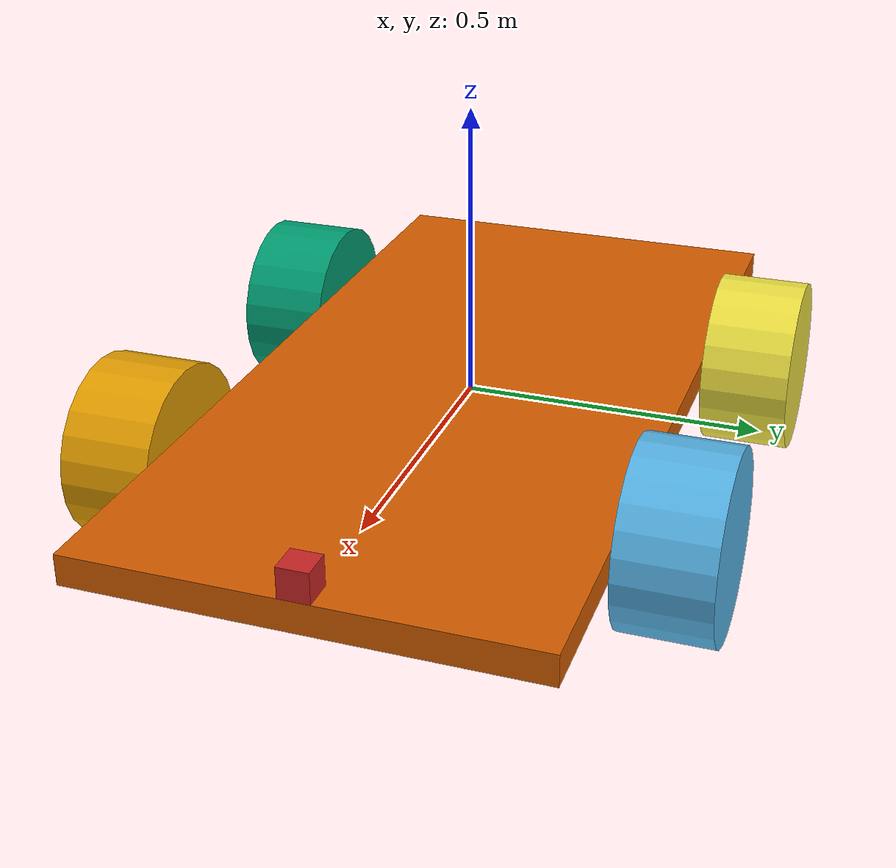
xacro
<?xml version="1.0"?>
<robot name="proto" xmlns:xacro="http://www.ros.org/wiki/xacro">
  <!--top level robot description-->
  <xacro:include filename="proto_constants.xacro"/>
  <xacro:include filename="proto_drivebase_controller.xacro"/>
  <xacro:include filename="proto_sensors.xacro"/>
  <xacro:include filename="proto_model.xacro"/>
</robot>

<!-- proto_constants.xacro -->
<robot name="proto" xmlns:xacro="http://www.ros.org/wiki/xacro">
  <!--shared model level constants for the prototype gazebo model-->

  <!--move base parameters-->
  <xacro:property name="itom" value="0.0254" /> <!-- Inches to meters conversion -->
  <xacro:property name="base_width" value="${29*itom}"/>
  <xacro:property name="base_length" value="${58*itom}"/> <!-- Max val: 50" bare minimum -->
  <xacro:property name="base_height" value="${2*itom}"/>
  <xacro:property name="base_mass"   value="5"/>

  <!--wheel parameters-->
  <xacro:property name="wheel_radius" value="${6*itom}"/>
  <xacro:property name="wheel_width" value="${6*itom}"/>
  <xacro:property name="wheel_mass" value="0.5"/>

  <!--stereo camera parameters-->
  <xacro:property name="camera_size" value="0.05" />
  <xacro:property name="camera_mass" value="0.01" />
</robot>

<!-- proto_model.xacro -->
<robot xmlns:xacro="http://www.ros.org/wiki/xacro" name="proto">

  <!--DRIVEBASE-->
  <!-- A macro for creating a wheel with a link, joint, and transmission -->
  <xacro:macro name="wheel" params="name fb lr">
    <link name="${name}">
      <visual>
        <geometry>
          <cylinder radius="${wheel_radius}" length="${wheel_width}" />
        </geometry>
        <origin rpy="${pi/2} 0 0" />
      </visual>
      <collision>
        <geometry>
          <cylinder radius="${wheel_radius}" length="${wheel_width}" />
        </geometry>
        <origin rpy="${pi/2} 0 0" />
      </collision>
      <inertial>
        <origin xyz="0 ${wheel_width/2} 0" rpy="0 0 0"/>
        <mass value="${wheel_mass}"/>
        <inertia ixx="${(wheel_mass*wheel_radius**2)/2}" ixy="0.0" ixz="0.0" iyy="${(wheel_mass*wheel_width**2)/12}" iyz="0.0" izz="${(wheel_mass*wheel_radius**2)/2}"/>
      </inertial>
    </link>
    <joint name="${name}_joint" type="continuous">
      <parent link="base_link"/>
      <child link="${name}"/>
      <origin xyz="${fb*base_length/2 - 16*fb*itom} ${lr*base_width/2 + lr*wheel_width/2} ${-base_height/2}"/>
      <axis xyz="0 1 0"/>
      <limit effort="100.0"  velocity="100.0"/>
      <dynamics damping="0.7"/>
    </joint>
    <transmission name="${name}_tran">
      <type>transmission_interface/SimpleTransmission</type>
      <joint name="${name}_joint">
        <hardwareInterface>hardware_interface/EffortJointInterface</hardwareInterface>
      </joint>
      <actuator name="${name}_motor">
        <hardwareInterface>hardware_interface/EffortJointInterface</hardwareInterface>
        <mechanicalReduction>1</mechanicalReduction>
        <motorTorqueConstant>1</motorTorqueConstant>
      </actuator>
    </transmission>
  </xacro:macro>

  <!--stamp out the wheels-->
  <xacro:wheel name="wheel_fr" fb="1" lr="-1" />
  <xacro:wheel name="wheel_fl" fb="1" lr="1" />
  <xacro:wheel name="wheel_rr" fb="-1" lr="-1" />
  <xacro:wheel name="wheel_rl" fb="-1" lr="1" />

  <!--CHASSIS-->
  <link name="god" /> <!-- This is necessary because Gazebo complains about the base link having inertia, for some reason -->
  <link name="base_link" >
    <visual>
      <geometry>
        <box size="${base_length} ${base_width} ${base_height}" />
      </geometry>
    </visual>
    <collision>
      <geometry>
        <box size="${base_length} ${base_width} ${base_height}" />
      </geometry>
    </collision>
    <inertial>
      <mass value="${base_mass}"/>
      <inertia ixx="${base_mass/12*(base_width**2+base_length**2)}" ixy="0.0" ixz="0.0" iyy="${base_mass/12*(base_length**2+base_height**2)}" iyz="0.0" izz="${base_mass/12*(base_width**2+base_height**2)}"/>
    </inertial>
  </link>
  <joint name="god_to_base" type="fixed">
    <parent link="god" />
    <child link="base_link" />
    <origin xyz="0 0 0" />
  </joint>

  <!--STEREO CAMERA-->
  <joint name="camera_joint" type="fixed">
    <origin xyz="${base_length/2} 0 ${base_height/2}" rpy="0 0 0"/>
    <parent link="base_link"/>
    <child link="camera_link"/>
  </joint>
  <link name="camera_link">
    <collision>
      <origin xyz="-${camera_size/2} 0 ${camera_size/2}" rpy="0 0 0"/>
      <geometry>
        <box size="${camera_size} ${camera_size} ${camera_size}"/>
      </geometry>
    </collision>
    <visual>
      <origin xyz="-${camera_size/2} 0 ${camera_size/2}" rpy="0 0 0"/>
      <geometry>
        <box size="${camera_size} ${camera_size} ${camera_size}"/>
      </geometry>
      <material name="red"/>
    </visual>
    <inertial>
      <mass value="${camera_mass}" />
      <origin xyz="-${camera_size/2} 0 ${camera_size/2}" rpy="0 0 0"/>
      <inertia ixx="${(camera_mass*camera_size**2)/6}" ixy="0" ixz="0" iyy="${(camera_mass*camera_size**2)/6}" iyz="0" izz="${(camera_mass*camera_size**2)/6}" />
    </inertial>
  </link>
</robot>
